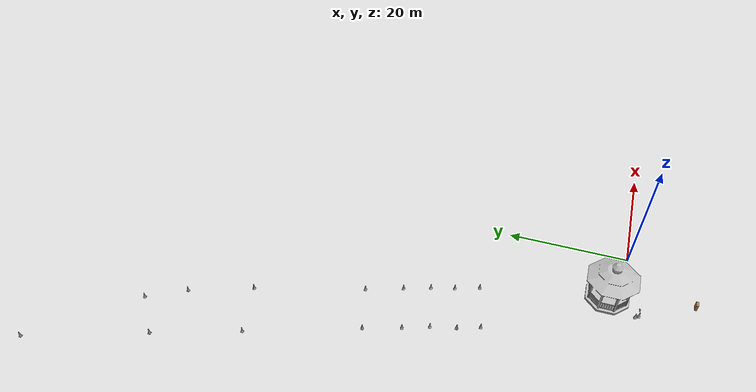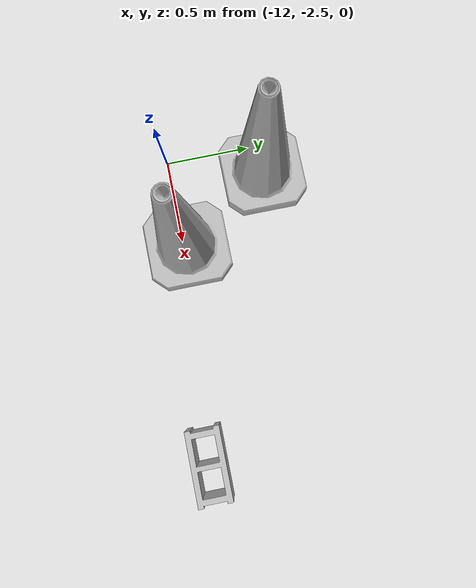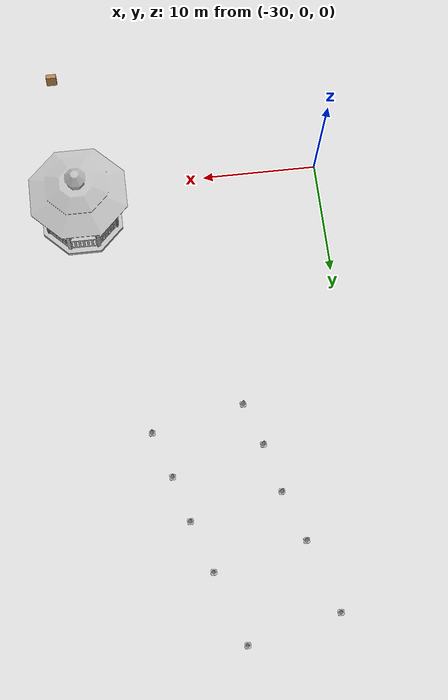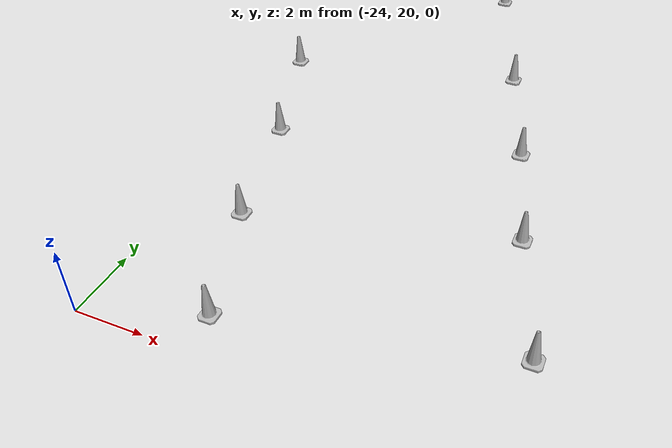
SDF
<sdf version="1.6">
 <world name="default">
  <light name="sun" type="directional">
   <pose>0 0 10 0 -0 0</pose>
   <diffuse>0.8 0.8 0.8 1</diffuse>
   <specular>0.2 0.2 0.2 1</specular>
   <attenuation>
    <range>1000</range>
    <constant>0.9</constant>
    <linear>0.01</linear>
    <quadratic>0.001</quadratic>
   </attenuation>
   <direction>-0.5 0.1 -0.9</direction>
  </light>
  <gravity>0 0 -9.8</gravity>
  <magnetic_field>6e-06 2.3e-05 -4.2e-05</magnetic_field>
  <atmosphere type="adiabatic"/>
  <physics name="default_physics" default="0" type="ode">
   <max_step_size>0.001</max_step_size>
   <real_time_factor>1</real_time_factor>
   <real_time_update_rate>1000</real_time_update_rate>
  </physics>
  <scene><ambient>0.4 0.4 0.4 1</ambient><background>0.7 0.7 0.7 1</background><shadows>1</shadows></scene>
  <spherical_coordinates>
   <surface_model>EARTH_WGS84</surface_model>
   <latitude_deg>0</latitude_deg>
   <longitude_deg>0</longitude_deg>
   <elevation>0</elevation>
   <heading_deg>0</heading_deg>
  </spherical_coordinates>
  <model name="bookshelf">
   <static>1</static>
   <link name="link">
    <inertial><mass>1</mass></inertial>
    <collision name="back">
     <pose>0 0.005 0.6 0 -0 0</pose>
     <geometry><box><size>0.9 0.01 1.2</size></box></geometry>
    </collision>
    <visual name="visual1">
     <pose>0 0.005 0.6 0 -0 0</pose>
     <geometry><box><size>0.9 0.01 1.2</size></box></geometry>
     <material>
      <script><uri>file://media/materials/scripts/gazebo.material</uri><name>Gazebo/Wood</name></script>
     </material>
    </visual>
    <collision name="left_side">
     <pose>0.45 -0.195 0.6 0 -0 0</pose>
     <geometry><box><size>0.02 0.4 1.2</size></box></geometry>
    </collision>
    <visual name="visual2">
     <pose>0.45 -0.195 0.6 0 -0 0</pose>
     <geometry><box><size>0.02 0.4 1.2</size></box></geometry>
     <material>
      <script><uri>file://media/materials/scripts/gazebo.material</uri><name>Gazebo/Wood</name></script>
     </material>
    </visual>
    <collision name="right_side">
     <pose>-0.45 -0.195 0.6 0 -0 0</pose>
     <geometry><box><size>0.02 0.4 1.2</size></box></geometry>
    </collision>
    <visual name="visual3">
     <pose>-0.45 -0.195 0.6 0 -0 0</pose>
     <geometry><box><size>0.02 0.4 1.2</size></box></geometry>
     <material>
      <script><uri>file://media/materials/scripts/gazebo.material</uri><name>Gazebo/Wood</name></script>
     </material>
    </visual>
    <collision name="bottom">
     <pose>0 -0.195 0.03 0 -0 0</pose>
     <geometry><box><size>0.88 0.4 0.06</size></box></geometry>
    </collision>
    <visual name="visual4">
     <pose>0 -0.195 0.03 0 -0 0</pose>
     <geometry><box><size>0.88 0.4 0.06</size></box></geometry>
     <material>
      <script><uri>file://media/materials/scripts/gazebo.material</uri><name>Gazebo/Wood</name></script>
     </material>
    </visual>
    <collision name="top">
     <pose>0 -0.195 1.19 0 -0 0</pose>
     <geometry><box><size>0.88 0.4 0.02</size></box></geometry>
    </collision>
    <visual name="visual5">
     <pose>0 -0.195 1.19 0 -0 0</pose>
     <geometry><box><size>0.88 0.4 0.02</size></box></geometry>
     <material>
      <script><uri>file://media/materials/scripts/gazebo.material</uri><name>Gazebo/Wood</name></script>
     </material>
    </visual>
    <collision name="low_shelf">
     <pose>0 -0.195 0.43 0 -0 0</pose>
     <geometry><box><size>0.88 0.4 0.02</size></box></geometry>
    </collision>
    <visual name="visual6">
     <pose>0 -0.195 0.43 0 -0 0</pose>
     <geometry><box><size>0.88 0.4 0.02</size></box></geometry>
     <material>
      <script><uri>file://media/materials/scripts/gazebo.material</uri><name>Gazebo/Wood</name></script>
     </material>
    </visual>
    <collision name="high_shelf">
     <pose>0 -0.195 0.8 0 -0 0</pose>
     <geometry><box><size>0.88 0.4 0.02</size></box></geometry>
    </collision>
    <visual name="visual7">
     <pose>0 -0.195 0.8 0 -0 0</pose>
     <geometry><box><size>0.88 0.4 0.02</size></box></geometry>
     <material>
      <script><uri>file://media/materials/scripts/gazebo.material</uri><name>Gazebo/Wood</name></script>
     </material>
    </visual>
   </link>
   <pose>-7.25855 -10.9127 0 0 -0 0</pose>
  </model>
  <model name="cinder_block">
   <link name="link">
    <inertial>
     <pose>0 0 0.1016 0 -0 0</pose>
     <mass>5</mass>
     <inertia>
      <ixx>0.028705</ixx>
      <ixy>0</ixy>
      <iyy>0.073708</iyy>
      <ixz>0</ixz>
      <iyz>0</iyz>
      <izz>0.06908</izz>
     </inertia>
    </inertial>
    <visual name="visual">
     <geometry><mesh><uri>model://cinder_block/meshes/cinder_block.dae</uri></mesh></geometry>
    </visual>
    <collision name="left">
     <pose>0 -0.08465 0.1016 0 -0 0</pose>
     <geometry><box><size>0.43495 0.0339 0.2032</size></box></geometry>
     <surface>
      <contact><ode><max_vel>0.1</max_vel><min_depth>0.001</min_depth></ode></contact>
      <friction><ode><mu>1</mu><mu2>1</mu2></ode></friction>
     </surface>
    </collision>
    <collision name="right">
     <pose>0 0.08465 0.1016 0 -0 0</pose>
     <geometry><box><size>0.43495 0.0339 0.2032</size></box></geometry>
     <surface>
      <contact><ode><max_vel>0.1</max_vel><min_depth>0.001</min_depth></ode></contact>
      <friction><ode><mu>1</mu><mu2>1</mu2></ode></friction>
     </surface>
    </collision>
    <collision name="front">
     <pose>0.18625 0 0.1016 0 -0 0</pose>
     <geometry><box><size>0.0339 0.1354 0.203</size></box></geometry>
     <surface>
      <contact><ode><max_vel>0.1</max_vel><min_depth>0.001</min_depth></ode></contact>
      <friction><ode><mu>1</mu><mu2>1</mu2></ode></friction>
     </surface>
    </collision>
    <collision name="middle">
     <pose>0 0 0.1016 0 -0 0</pose>
     <geometry><box><size>0.0339 0.1354 0.203</size></box></geometry>
     <surface>
      <contact><ode><max_vel>0.1</max_vel><min_depth>0.001</min_depth></ode></contact>
      <friction><ode><mu>1</mu><mu2>1</mu2></ode></friction>
     </surface>
    </collision>
    <collision name="back">
     <pose>-0.18625 0 0.1016 0 -0 0</pose>
     <geometry><box><size>0.0339 0.1354 0.203</size></box></geometry>
     <surface>
      <contact><ode><max_vel>0.1</max_vel><min_depth>0.001</min_depth></ode></contact>
      <friction><ode><mu>1</mu><mu2>1</mu2></ode></friction>
     </surface>
    </collision>
   </link>
   <pose>-10.1759 -2.5943 -0.149205 0 -0 0</pose>
  </model>
  <model name="gazebo">
   <static>1</static>
   <link name="link">
    <collision name="collision">
     <geometry><mesh><scale>3 3 2.5</scale><uri>model://gazebo/meshes/gazebo.dae</uri></mesh></geometry>
    </collision>
    <visual name="visual">
     <geometry><mesh><scale>3 3 2.5</scale><uri>model://gazebo/meshes/gazebo.dae</uri></mesh></geometry>
    </visual>
   </link>
   <pose>-8.95114 2.72054 0 0 -0 0</pose>
  </model>
  <model name="Construction Cone">
   <link name="link">
    <collision name="collision">
     <geometry>
      <mesh><scale>10 10 10</scale><uri>model://construction_cone/meshes/construction_cone.dae</uri></mesh>
     </geometry>
    </collision>
    <visual name="visual">
     <geometry>
      <mesh><scale>10 10 10</scale><uri>model://construction_cone/meshes/construction_cone.dae</uri></mesh>
     </geometry>
    </visual>
    <inertial>
     <inertia><ixx>1</ixx><ixy>0</ixy><ixz>0</ixz><iyy>1</iyy><iyz>0</iyz><izz>1</izz></inertia>
     <mass>1</mass>
    </inertial>
   </link>
   <pose>-11.8761 -1.92527 -0.148254 -1e-06 1e-06 0</pose>
  </model>
  <model name="Construction Cone_0">
   <link name="link">
    <collision name="collision">
     <geometry>
      <mesh><scale>10 10 10</scale><uri>model://construction_cone/meshes/construction_cone.dae</uri></mesh>
     </geometry>
    </collision>
    <visual name="visual">
     <geometry>
      <mesh><scale>10 10 10</scale><uri>model://construction_cone/meshes/construction_cone.dae</uri></mesh>
     </geometry>
    </visual>
    <inertial>
     <inertia><ixx>1</ixx><ixy>0</ixy><ixz>0</ixz><iyy>1</iyy><iyz>0</iyz><izz>1</izz></inertia>
     <mass>1</mass>
    </inertial>
   </link>
   <pose>-11.4937 -2.48057 -0.148244 0 -0 0</pose>
  </model>
  <model name="Construction Cone_1">
   <link name="link">
    <collision name="collision">
     <geometry>
      <mesh><scale>10 10 10</scale><uri>model://construction_cone/meshes/construction_cone.dae</uri></mesh>
     </geometry>
    </collision>
    <visual name="visual">
     <geometry>
      <mesh><scale>10 10 10</scale><uri>model://construction_cone/meshes/construction_cone.dae</uri></mesh>
     </geometry>
    </visual>
    <inertial>
     <inertia><ixx>1</ixx><ixy>0</ixy><ixz>0</ixz><iyy>1</iyy><iyz>0</iyz><izz>1</izz></inertia>
     <mass>1</mass>
    </inertial>
   </link>
   <pose>-13.1213 22.9239 -0.148244 0 -0 0</pose>
  </model>
  <model name="Construction Cone_2">
   <link name="link">
    <collision name="collision">
     <geometry>
      <mesh><scale>10 10 10</scale><uri>model://construction_cone/meshes/construction_cone.dae</uri></mesh>
     </geometry>
    </collision>
    <visual name="visual">
     <geometry>
      <mesh><scale>10 10 10</scale><uri>model://construction_cone/meshes/construction_cone.dae</uri></mesh>
     </geometry>
    </visual>
    <inertial>
     <inertia><ixx>1</ixx><ixy>0</ixy><ixz>0</ixz><iyy>1</iyy><iyz>0</iyz><izz>1</izz></inertia>
     <mass>1</mass>
    </inertial>
   </link>
   <pose>-14.4173 26.8144 -0.148244 0 -0 0</pose>
  </model>
  <model name="Construction Cone_3">
   <link name="link">
    <collision name="collision">
     <geometry>
      <mesh><scale>10 10 10</scale><uri>model://construction_cone/meshes/construction_cone.dae</uri></mesh>
     </geometry>
    </collision>
    <visual name="visual">
     <geometry>
      <mesh><scale>10 10 10</scale><uri>model://construction_cone/meshes/construction_cone.dae</uri></mesh>
     </geometry>
    </visual>
    <inertial>
     <inertia><ixx>1</ixx><ixy>0</ixy><ixz>0</ixz><iyy>1</iyy><iyz>0</iyz><izz>1</izz></inertia>
     <mass>1</mass>
    </inertial>
   </link>
   <pose>-16.8803 34.8919 -0.148244 1e-06 -0 0</pose>
  </model>
  <model name="Construction Cone_4">
   <link name="link">
    <collision name="collision">
     <geometry>
      <mesh><scale>10 10 10</scale><uri>model://construction_cone/meshes/construction_cone.dae</uri></mesh>
     </geometry>
    </collision>
    <visual name="visual">
     <geometry>
      <mesh><scale>10 10 10</scale><uri>model://construction_cone/meshes/construction_cone.dae</uri></mesh>
     </geometry>
    </visual>
    <inertial>
     <inertia><ixx>1</ixx><ixy>0</ixy><ixz>0</ixz><iyy>1</iyy><iyz>0</iyz><izz>1</izz></inertia>
     <mass>1</mass>
    </inertial>
   </link>
   <pose>-15.4702 30.6217 -0.148244 0 -0 0</pose>
  </model>
  <model name="Construction Cone_5">
   <link name="link">
    <collision name="collision">
     <geometry>
      <mesh><scale>10 10 10</scale><uri>model://construction_cone/meshes/construction_cone.dae</uri></mesh>
     </geometry>
    </collision>
    <visual name="visual">
     <geometry>
      <mesh><scale>10 10 10</scale><uri>model://construction_cone/meshes/construction_cone.dae</uri></mesh>
     </geometry>
    </visual>
    <inertial>
     <inertia><ixx>1</ixx><ixy>0</ixy><ixz>0</ixz><iyy>1</iyy><iyz>0</iyz><izz>1</izz></inertia>
     <mass>1</mass>
    </inertial>
   </link>
   <pose>-18.8748 40.8502 -0.148244 0 -0 0</pose>
  </model>
  <model name="Construction Cone_6">
   <link name="link">
    <collision name="collision">
     <geometry>
      <mesh><scale>10 10 10</scale><uri>model://construction_cone/meshes/construction_cone.dae</uri></mesh>
     </geometry>
    </collision>
    <visual name="visual">
     <geometry>
      <mesh><scale>10 10 10</scale><uri>model://construction_cone/meshes/construction_cone.dae</uri></mesh>
     </geometry>
    </visual>
    <inertial>
     <inertia><ixx>1</ixx><ixy>0</ixy><ixz>0</ixz><iyy>1</iyy><iyz>0</iyz><izz>1</izz></inertia>
     <mass>1</mass>
    </inertial>
   </link>
   <pose>-20.9265 21.2475 -0.148254 2e-06 -1e-06 -0</pose>
  </model>
  <model name="Construction Cone_7">
   <link name="link">
    <collision name="collision">
     <geometry>
      <mesh><scale>10 10 10</scale><uri>model://construction_cone/meshes/construction_cone.dae</uri></mesh>
     </geometry>
    </collision>
    <visual name="visual">
     <geometry>
      <mesh><scale>10 10 10</scale><uri>model://construction_cone/meshes/construction_cone.dae</uri></mesh>
     </geometry>
    </visual>
    <inertial>
     <inertia><ixx>1</ixx><ixy>0</ixy><ixz>0</ixz><iyy>1</iyy><iyz>0</iyz><izz>1</izz></inertia>
     <mass>1</mass>
    </inertial>
   </link>
   <pose>-22.1856 24.8586 -0.148253 2e-06 -1e-06 -0</pose>
  </model>
  <model name="Construction Cone_8">
   <link name="link">
    <collision name="collision">
     <geometry>
      <mesh><scale>10 10 10</scale><uri>model://construction_cone/meshes/construction_cone.dae</uri></mesh>
     </geometry>
    </collision>
    <visual name="visual">
     <geometry>
      <mesh><scale>10 10 10</scale><uri>model://construction_cone/meshes/construction_cone.dae</uri></mesh>
     </geometry>
    </visual>
    <inertial>
     <inertia><ixx>1</ixx><ixy>0</ixy><ixz>0</ixz><iyy>1</iyy><iyz>0</iyz><izz>1</izz></inertia>
     <mass>1</mass>
    </inertial>
   </link>
   <pose>-23.1731 28.9611 -0.148253 1e-06 -0 0</pose>
  </model>
  <model name="Construction Cone_9">
   <link name="link">
    <collision name="collision">
     <geometry>
      <mesh><scale>10 10 10</scale><uri>model://construction_cone/meshes/construction_cone.dae</uri></mesh>
     </geometry>
    </collision>
    <visual name="visual">
     <geometry>
      <mesh><scale>10 10 10</scale><uri>model://construction_cone/meshes/construction_cone.dae</uri></mesh>
     </geometry>
    </visual>
    <inertial>
     <inertia><ixx>1</ixx><ixy>0</ixy><ixz>0</ixz><iyy>1</iyy><iyz>0</iyz><izz>1</izz></inertia>
     <mass>1</mass>
    </inertial>
   </link>
   <pose>-24.6237 33.1476 -0.148254 0 -0 0</pose>
  </model>
  <model name="Construction Cone_10">
   <link name="link">
    <collision name="collision">
     <geometry>
      <mesh><scale>10 10 10</scale><uri>model://construction_cone/meshes/construction_cone.dae</uri></mesh>
     </geometry>
    </collision>
    <visual name="visual">
     <geometry>
      <mesh><scale>10 10 10</scale><uri>model://construction_cone/meshes/construction_cone.dae</uri></mesh>
     </geometry>
    </visual>
    <inertial>
     <inertia><ixx>1</ixx><ixy>0</ixy><ixz>0</ixz><iyy>1</iyy><iyz>0</iyz><izz>1</izz></inertia>
     <mass>1</mass>
    </inertial>
   </link>
   <pose>-26.5222 39.1001 -0.148244 0 -0 0</pose>
  </model>
  <model name="Construction Cone_11">
   <link name="link">
    <collision name="collision">
     <geometry>
      <mesh><scale>10 10 10</scale><uri>model://construction_cone/meshes/construction_cone.dae</uri></mesh>
     </geometry>
    </collision>
    <visual name="visual">
     <geometry>
      <mesh><scale>10 10 10</scale><uri>model://construction_cone/meshes/construction_cone.dae</uri></mesh>
     </geometry>
    </visual>
    <inertial>
     <inertia><ixx>1</ixx><ixy>0</ixy><ixz>0</ixz><iyy>1</iyy><iyz>0</iyz><izz>1</izz></inertia>
     <mass>1</mass>
    </inertial>
   </link>
   <pose>-23.9286 58.4712 -0.148244 0 -0 0</pose>
  </model>
  <model name="Construction Cone_12">
   <link name="link">
    <collision name="collision">
     <geometry>
      <mesh><scale>10 10 10</scale><uri>model://construction_cone/meshes/construction_cone.dae</uri></mesh>
     </geometry>
    </collision>
    <visual name="visual">
     <geometry>
      <mesh><scale>10 10 10</scale><uri>model://construction_cone/meshes/construction_cone.dae</uri></mesh>
     </geometry>
    </visual>
    <inertial>
     <inertia><ixx>1</ixx><ixy>0</ixy><ixz>0</ixz><iyy>1</iyy><iyz>0</iyz><izz>1</izz></inertia>
     <mass>1</mass>
    </inertial>
   </link>
   <pose>-32.5189 56.987 -0.148244 0 -0 0</pose>
  </model>
  <model name="Construction Cone_13">
   <link name="link">
    <collision name="collision">
     <geometry>
      <mesh><scale>10 10 10</scale><uri>model://construction_cone/meshes/construction_cone.dae</uri></mesh>
     </geometry>
    </collision>
    <visual name="visual">
     <geometry>
      <mesh><scale>10 10 10</scale><uri>model://construction_cone/meshes/construction_cone.dae</uri></mesh>
     </geometry>
    </visual>
    <inertial>
     <inertia><ixx>1</ixx><ixy>0</ixy><ixz>0</ixz><iyy>1</iyy><iyz>0</iyz><izz>1</izz></inertia>
     <mass>1</mass>
    </inertial>
   </link>
   <pose>-27.5165 68.6698 -0.148244 0 -0 0</pose>
  </model>
  <model name="Construction Cone_14">
   <link name="link">
    <collision name="collision">
     <geometry>
      <mesh><scale>10 10 10</scale><uri>model://construction_cone/meshes/construction_cone.dae</uri></mesh>
     </geometry>
    </collision>
    <visual name="visual">
     <geometry>
      <mesh><scale>10 10 10</scale><uri>model://construction_cone/meshes/construction_cone.dae</uri></mesh>
     </geometry>
    </visual>
    <inertial>
     <inertia><ixx>1</ixx><ixy>0</ixy><ixz>0</ixz><iyy>1</iyy><iyz>0</iyz><izz>1</izz></inertia>
     <mass>1</mass>
    </inertial>
   </link>
   <pose>-37.022 70.7723 -0.148244 0 -0 0</pose>
  </model>
  <model name="Construction Cone_15">
   <link name="link">
    <collision name="collision">
     <geometry>
      <mesh><scale>10 10 10</scale><uri>model://construction_cone/meshes/construction_cone.dae</uri></mesh>
     </geometry>
    </collision>
    <visual name="visual">
     <geometry>
      <mesh><scale>10 10 10</scale><uri>model://construction_cone/meshes/construction_cone.dae</uri></mesh>
     </geometry>
    </visual>
    <inertial>
     <inertia><ixx>1</ixx><ixy>0</ixy><ixz>0</ixz><iyy>1</iyy><iyz>0</iyz><izz>1</izz></inertia>
     <mass>1</mass>
    </inertial>
   </link>
   <pose>-30.7685 74.8574 -0.148244 1e-06 -0 0</pose>
  </model>
  <model name="Construction Cone_16">
   <link name="link">
    <collision name="collision">
     <geometry>
      <mesh><scale>10 10 10</scale><uri>model://construction_cone/meshes/construction_cone.dae</uri></mesh>
     </geometry>
    </collision>
    <visual name="visual">
     <geometry>
      <mesh><scale>10 10 10</scale><uri>model://construction_cone/meshes/construction_cone.dae</uri></mesh>
     </geometry>
    </visual>
    <inertial>
     <inertia><ixx>1</ixx><ixy>0</ixy><ixz>0</ixz><iyy>1</iyy><iyz>0</iyz><izz>1</izz></inertia>
     <mass>1</mass>
    </inertial>
   </link>
   <pose>-43.3965 89.815 -0.148244 0 -0 0</pose>
  </model>
 </world>
</sdf>
